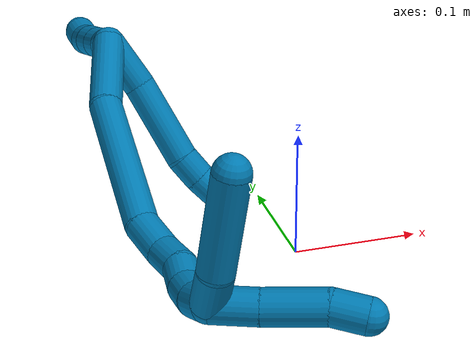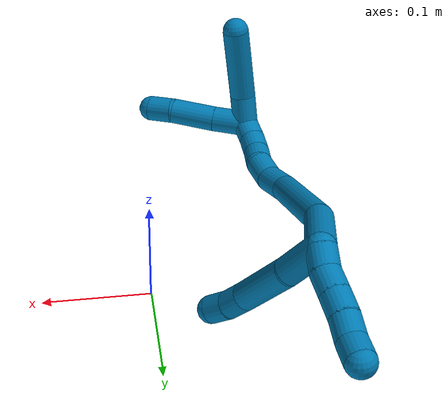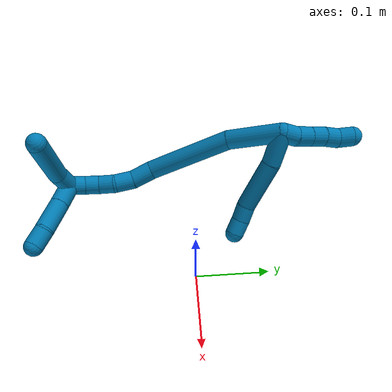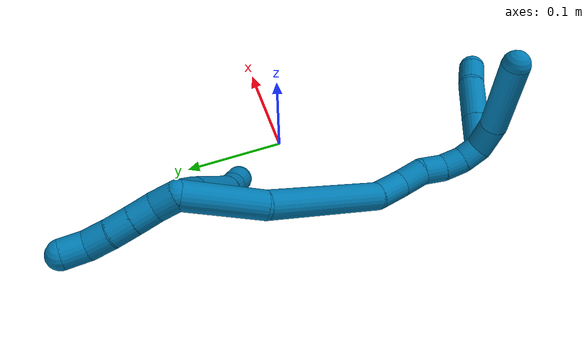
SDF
<sdf version="1.7">
 <world name="default">
  <model name="9">
   <static>0</static>
   <link name="9">
    <collision name="collision-cylinder-e_1_2_8">
     <pose>0.014747 0.001646 -0.014513 -3.02866 0.790207 -2.87214</pose>
     <geometry><cylinder><radius>0.0125</radius><length>0.041511</length></cylinder></geometry>
     <surface>
      <friction><ode><mu>1.16</mu><mu2>1.16</mu2><slip1>0</slip1><slip2>0</slip2></ode></friction>
      <contact><ode><kp>1e+06</kp><kd>1</kd><max_vel>0</max_vel><min_depth>0.001</min_depth></ode></contact>
     </surface>
    </collision>
    <visual name="visual-cylinder-e_1_2_8">
     <pose>0.014747 0.001646 -0.014513 -3.02866 0.790207 -2.87214</pose>
     <geometry><cylinder><radius>0.0125</radius><length>0.041511</length></cylinder></geometry>
     <material><ambient>0 0.490196 0.709804 1</ambient></material>
    </visual>
    <collision name="collision-cylinder-e_2_8_9">
     <pose>0.053669 -0.000379 -0.051631 2.98059 0.812438 2.7708</pose>
     <geometry><cylinder><radius>0.0125</radius><length>0.066602</length></cylinder></geometry>
     <surface>
      <friction><ode><mu>1.16</mu><mu2>1.16</mu2><slip1>0</slip1><slip2>0</slip2></ode></friction>
      <contact><ode><kp>1e+06</kp><kd>1</kd><max_vel>0</max_vel><min_depth>0.001</min_depth></ode></contact>
     </surface>
    </collision>
    <visual name="visual-cylinder-e_2_8_9">
     <pose>0.053669 -0.000379 -0.051631 2.98059 0.812438 2.7708</pose>
     <geometry><cylinder><radius>0.0125</radius><length>0.066602</length></cylinder></geometry>
     <material><ambient>0 0.490196 0.709804 1</ambient></material>
    </visual>
    <collision name="collision-cylinder-e_3_9_10">
     <pose>0.086241 -0.003094 -0.080845 -2.99787 0.899023 -2.84536</pose>
     <geometry><cylinder><radius>0.0125</radius><length>0.021454</length></cylinder></geometry>
     <surface>
      <friction><ode><mu>1.16</mu><mu2>1.16</mu2><slip1>0</slip1><slip2>0</slip2></ode></friction>
      <contact><ode><kp>1e+06</kp><kd>1</kd><max_vel>0</max_vel><min_depth>0.001</min_depth></ode></contact>
     </surface>
    </collision>
    <visual name="visual-cylinder-e_3_9_10">
     <pose>0.086241 -0.003094 -0.080845 -2.99787 0.899023 -2.84536</pose>
     <geometry><cylinder><radius>0.0125</radius><length>0.021454</length></cylinder></geometry>
     <material><ambient>0 0.490196 0.709804 1</ambient></material>
    </visual>
    <collision name="collision-cylinder-e_4_10_6">
     <pose>0.103572 -0.001413 -0.092353 -2.99469 1.06453 -2.893</pose>
     <geometry><cylinder><radius>0.0125</radius><length>0.020433</length></cylinder></geometry>
     <surface>
      <friction><ode><mu>1.16</mu><mu2>1.16</mu2><slip1>0</slip1><slip2>0</slip2></ode></friction>
      <contact><ode><kp>1e+06</kp><kd>1</kd><max_vel>0</max_vel><min_depth>0.001</min_depth></ode></contact>
     </surface>
    </collision>
    <visual name="visual-cylinder-e_4_10_6">
     <pose>0.103572 -0.001413 -0.092353 -2.99469 1.06453 -2.893</pose>
     <geometry><cylinder><radius>0.0125</radius><length>0.020433</length></cylinder></geometry>
     <material><ambient>0 0.490196 0.709804 1</ambient></material>
    </visual>
    <collision name="collision-cylinder-e_1_2_11">
     <pose>-0.005003 0.007056 -0.005018 -2.18902 -0.523954 0.958644</pose>
     <geometry><cylinder><radius>0.0125</radius><length>0.02</length></cylinder></geometry>
     <surface>
      <friction><ode><mu>1.16</mu><mu2>1.16</mu2><slip1>0</slip1><slip2>0</slip2></ode></friction>
      <contact><ode><kp>1e+06</kp><kd>1</kd><max_vel>0</max_vel><min_depth>0.001</min_depth></ode></contact>
     </surface>
    </collision>
    <visual name="visual-cylinder-e_1_2_11">
     <pose>-0.005003 0.007056 -0.005018 -2.18902 -0.523954 0.958644</pose>
     <geometry><cylinder><radius>0.0125</radius><length>0.02</length></cylinder></geometry>
     <material><ambient>0 0.490196 0.709804 1</ambient></material>
    </visual>
    <collision name="collision-cylinder-e_2_11_12">
     <pose>-0.016879 0.020237 -0.013942 -2.13835 -0.757706 1.25578</pose>
     <geometry><cylinder><radius>0.0125</radius><length>0.02</length></cylinder></geometry>
     <surface>
      <friction><ode><mu>1.16</mu><mu2>1.16</mu2><slip1>0</slip1><slip2>0</slip2></ode></friction>
      <contact><ode><kp>1e+06</kp><kd>1</kd><max_vel>0</max_vel><min_depth>0.001</min_depth></ode></contact>
     </surface>
    </collision>
    <visual name="visual-cylinder-e_2_11_12">
     <pose>-0.016879 0.020237 -0.013942 -2.13835 -0.757706 1.25578</pose>
     <geometry><cylinder><radius>0.0125</radius><length>0.02</length></cylinder></geometry>
     <material><ambient>0 0.490196 0.709804 1</ambient></material>
    </visual>
    <collision name="collision-cylinder-e_3_12_13">
     <pose>-0.030541 0.032642 -0.02165 -2.11536 -0.746358 1.21454</pose>
     <geometry><cylinder><radius>0.0125</radius><length>0.02</length></cylinder></geometry>
     <surface>
      <friction><ode><mu>1.16</mu><mu2>1.16</mu2><slip1>0</slip1><slip2>0</slip2></ode></friction>
      <contact><ode><kp>1e+06</kp><kd>1</kd><max_vel>0</max_vel><min_depth>0.001</min_depth></ode></contact>
     </surface>
    </collision>
    <visual name="visual-cylinder-e_3_12_13">
     <pose>-0.030541 0.032642 -0.02165 -2.11536 -0.746358 1.21454</pose>
     <geometry><cylinder><radius>0.0125</radius><length>0.02</length></cylinder></geometry>
     <material><ambient>0 0.490196 0.709804 1</ambient></material>
    </visual>
    <collision name="collision-cylinder-e_4_13_14">
     <pose>-0.043323 0.045787 -0.02957 -2.11097 -0.642597 1.06262</pose>
     <geometry><cylinder><radius>0.0125</radius><length>0.02</length></cylinder></geometry>
     <surface>
      <friction><ode><mu>1.16</mu><mu2>1.16</mu2><slip1>0</slip1><slip2>0</slip2></ode></friction>
      <contact><ode><kp>1e+06</kp><kd>1</kd><max_vel>0</max_vel><min_depth>0.001</min_depth></ode></contact>
     </surface>
    </collision>
    <visual name="visual-cylinder-e_4_13_14">
     <pose>-0.043323 0.045787 -0.02957 -2.11097 -0.642597 1.06262</pose>
     <geometry><cylinder><radius>0.0125</radius><length>0.02</length></cylinder></geometry>
     <material><ambient>0 0.490196 0.709804 1</ambient></material>
    </visual>
    <collision name="collision-cylinder-e_5_14_5">
     <pose>-0.056178 0.059813 -0.034969 -1.74794 -0.756271 0.886384</pose>
     <geometry><cylinder><radius>0.0125</radius><length>0.02</length></cylinder></geometry>
     <surface>
      <friction><ode><mu>1.16</mu><mu2>1.16</mu2><slip1>0</slip1><slip2>0</slip2></ode></friction>
      <contact><ode><kp>1e+06</kp><kd>1</kd><max_vel>0</max_vel><min_depth>0.001</min_depth></ode></contact>
     </surface>
    </collision>
    <visual name="visual-cylinder-e_5_14_5">
     <pose>-0.056178 0.059813 -0.034969 -1.74794 -0.756271 0.886384</pose>
     <geometry><cylinder><radius>0.0125</radius><length>0.02</length></cylinder></geometry>
     <material><ambient>0 0.490196 0.709804 1</ambient></material>
    </visual>
    <collision name="collision-cylinder-e_1_2_15">
     <pose>0.016968 -0.029759 -0.009369 1.8758 0.498138 0.667521</pose>
     <geometry><cylinder><radius>0.0125</radius><length>0.071029</length></cylinder></geometry>
     <surface>
      <friction><ode><mu>1.16</mu><mu2>1.16</mu2><slip1>0</slip1><slip2>0</slip2></ode></friction>
      <contact><ode><kp>1e+06</kp><kd>1</kd><max_vel>0</max_vel><min_depth>0.001</min_depth></ode></contact>
     </surface>
    </collision>
    <visual name="visual-cylinder-e_1_2_15">
     <pose>0.016968 -0.029759 -0.009369 1.8758 0.498138 0.667521</pose>
     <geometry><cylinder><radius>0.0125</radius><length>0.071029</length></cylinder></geometry>
     <material><ambient>0 0.490196 0.709804 1</ambient></material>
    </visual>
    <collision name="collision-cylinder-e_2_15_16">
     <pose>0.072367 -0.097472 -0.035375 1.98393 0.74771 1.0813</pose>
     <geometry><cylinder><radius>0.0125</radius><length>0.113035</length></cylinder></geometry>
     <surface>
      <friction><ode><mu>1.16</mu><mu2>1.16</mu2><slip1>0</slip1><slip2>0</slip2></ode></friction>
      <contact><ode><kp>1e+06</kp><kd>1</kd><max_vel>0</max_vel><min_depth>0.001</min_depth></ode></contact>
     </surface>
    </collision>
    <visual name="visual-cylinder-e_2_15_16">
     <pose>0.072367 -0.097472 -0.035375 1.98393 0.74771 1.0813</pose>
     <geometry><cylinder><radius>0.0125</radius><length>0.113035</length></cylinder></geometry>
     <material><ambient>0 0.490196 0.709804 1</ambient></material>
    </visual>
    <collision name="collision-cylinder-e_3_16_17">
     <pose>0.123495 -0.142806 -0.053534 1.77409 1.0353 1.21985</pose>
     <geometry><cylinder><radius>0.0125</radius><length>0.029531</length></cylinder></geometry>
     <surface>
      <friction><ode><mu>1.16</mu><mu2>1.16</mu2><slip1>0</slip1><slip2>0</slip2></ode></friction>
      <contact><ode><kp>1e+06</kp><kd>1</kd><max_vel>0</max_vel><min_depth>0.001</min_depth></ode></contact>
     </surface>
    </collision>
    <visual name="visual-cylinder-e_3_16_17">
     <pose>0.123495 -0.142806 -0.053534 1.77409 1.0353 1.21985</pose>
     <geometry><cylinder><radius>0.0125</radius><length>0.029531</length></cylinder></geometry>
     <material><ambient>0 0.490196 0.709804 1</ambient></material>
    </visual>
    <collision name="collision-cylinder-e_4_17_18">
     <pose>0.146096 -0.157578 -0.05269 1.26118 0.906005 0.68286</pose>
     <geometry><cylinder><radius>0.0125</radius><length>0.025165</length></cylinder></geometry>
     <surface>
      <friction><ode><mu>1.16</mu><mu2>1.16</mu2><slip1>0</slip1><slip2>0</slip2></ode></friction>
      <contact><ode><kp>1e+06</kp><kd>1</kd><max_vel>0</max_vel><min_depth>0.001</min_depth></ode></contact>
     </surface>
    </collision>
    <visual name="visual-cylinder-e_4_17_18">
     <pose>0.146096 -0.157578 -0.05269 1.26118 0.906005 0.68286</pose>
     <geometry><cylinder><radius>0.0125</radius><length>0.025165</length></cylinder></geometry>
     <material><ambient>0 0.490196 0.709804 1</ambient></material>
    </visual>
    <collision name="collision-cylinder-e_5_18_19">
     <pose>0.162381 -0.173425 -0.050198 1.55576 0.646546 0.637544</pose>
     <geometry><cylinder><radius>0.0125</radius><length>0.021187</length></cylinder></geometry>
     <surface>
      <friction><ode><mu>1.16</mu><mu2>1.16</mu2><slip1>0</slip1><slip2>0</slip2></ode></friction>
      <contact><ode><kp>1e+06</kp><kd>1</kd><max_vel>0</max_vel><min_depth>0.001</min_depth></ode></contact>
     </surface>
    </collision>
    <visual name="visual-cylinder-e_5_18_19">
     <pose>0.162381 -0.173425 -0.050198 1.55576 0.646546 0.637544</pose>
     <geometry><cylinder><radius>0.0125</radius><length>0.021187</length></cylinder></geometry>
     <material><ambient>0 0.490196 0.709804 1</ambient></material>
    </visual>
    <collision name="collision-cylinder-e_6_19_20">
     <pose>0.175309 -0.189014 -0.047518 1.22714 0.712488 0.512602</pose>
     <geometry><cylinder><radius>0.0125</radius><length>0.020026</length></cylinder></geometry>
     <surface>
      <friction><ode><mu>1.16</mu><mu2>1.16</mu2><slip1>0</slip1><slip2>0</slip2></ode></friction>
      <contact><ode><kp>1e+06</kp><kd>1</kd><max_vel>0</max_vel><min_depth>0.001</min_depth></ode></contact>
     </surface>
    </collision>
    <visual name="visual-cylinder-e_6_19_20">
     <pose>0.175309 -0.189014 -0.047518 1.22714 0.712488 0.512602</pose>
     <geometry><cylinder><radius>0.0125</radius><length>0.020026</length></cylinder></geometry>
     <material><ambient>0 0.490196 0.709804 1</ambient></material>
    </visual>
    <collision name="collision-cylinder-e_7_20_1">
     <pose>0.188703 -0.20178 -0.040312 0.880268 0.7531 0.368222</pose>
     <geometry><cylinder><radius>0.0125</radius><length>0.020027</length></cylinder></geometry>
     <surface>
      <friction><ode><mu>1.16</mu><mu2>1.16</mu2><slip1>0</slip1><slip2>0</slip2></ode></friction>
      <contact><ode><kp>1e+06</kp><kd>1</kd><max_vel>0</max_vel><min_depth>0.001</min_depth></ode></contact>
     </surface>
    </collision>
    <visual name="visual-cylinder-e_7_20_1">
     <pose>0.188703 -0.20178 -0.040312 0.880268 0.7531 0.368222</pose>
     <geometry><cylinder><radius>0.0125</radius><length>0.020027</length></cylinder></geometry>
     <material><ambient>0 0.490196 0.709804 1</ambient></material>
    </visual>
    <collision name="collision-cylinder-e_1_1_21">
     <pose>0.196937 -0.209943 -0.021016 0.171134 0.092978 0.007981</pose>
     <geometry><cylinder><radius>0.0125</radius><length>0.029849</length></cylinder></geometry>
     <surface>
      <friction><ode><mu>1.16</mu><mu2>1.16</mu2><slip1>0</slip1><slip2>0</slip2></ode></friction>
      <contact><ode><kp>1e+06</kp><kd>1</kd><max_vel>0</max_vel><min_depth>0.001</min_depth></ode></contact>
     </surface>
    </collision>
    <visual name="visual-cylinder-e_1_1_21">
     <pose>0.196937 -0.209943 -0.021016 0.171134 0.092978 0.007981</pose>
     <geometry><cylinder><radius>0.0125</radius><length>0.029849</length></cylinder></geometry>
     <material><ambient>0 0.490196 0.709804 1</ambient></material>
    </visual>
    <collision name="collision-cylinder-e_2_21_4">
     <pose>0.19768 -0.211608 0.028686 -0.024698 -0.018324 0.000226</pose>
     <geometry><cylinder><radius>0.0125</radius><length>0.070151</length></cylinder></geometry>
     <surface>
      <friction><ode><mu>1.16</mu><mu2>1.16</mu2><slip1>0</slip1><slip2>0</slip2></ode></friction>
      <contact><ode><kp>1e+06</kp><kd>1</kd><max_vel>0</max_vel><min_depth>0.001</min_depth></ode></contact>
     </surface>
    </collision>
    <visual name="visual-cylinder-e_2_21_4">
     <pose>0.19768 -0.211608 0.028686 -0.024698 -0.018324 0.000226</pose>
     <geometry><cylinder><radius>0.0125</radius><length>0.070151</length></cylinder></geometry>
     <material><ambient>0 0.490196 0.709804 1</ambient></material>
    </visual>
    <collision name="collision-cylinder-e_1_1_22">
     <pose>0.210573 -0.20212 -0.033066 -1.11539 1.19692 -0.804275</pose>
     <geometry><cylinder><radius>0.0125</radius><length>0.032272</length></cylinder></geometry>
     <surface>
      <friction><ode><mu>1.16</mu><mu2>1.16</mu2><slip1>0</slip1><slip2>0</slip2></ode></friction>
      <contact><ode><kp>1e+06</kp><kd>1</kd><max_vel>0</max_vel><min_depth>0.001</min_depth></ode></contact>
     </surface>
    </collision>
    <visual name="visual-cylinder-e_1_1_22">
     <pose>0.210573 -0.20212 -0.033066 -1.11539 1.19692 -0.804275</pose>
     <geometry><cylinder><radius>0.0125</radius><length>0.032272</length></cylinder></geometry>
     <material><ambient>0 0.490196 0.709804 1</ambient></material>
    </visual>
    <collision name="collision-cylinder-e_2_22_23">
     <pose>0.245472 -0.189665 -0.025754 -0.987997 1.16342 -0.680732</pose>
     <geometry><cylinder><radius>0.0125</radius><length>0.043299</length></cylinder></geometry>
     <surface>
      <friction><ode><mu>1.16</mu><mu2>1.16</mu2><slip1>0</slip1><slip2>0</slip2></ode></friction>
      <contact><ode><kp>1e+06</kp><kd>1</kd><max_vel>0</max_vel><min_depth>0.001</min_depth></ode></contact>
     </surface>
    </collision>
    <visual name="visual-cylinder-e_2_22_23">
     <pose>0.245472 -0.189665 -0.025754 -0.987997 1.16342 -0.680732</pose>
     <geometry><cylinder><radius>0.0125</radius><length>0.043299</length></cylinder></geometry>
     <material><ambient>0 0.490196 0.709804 1</ambient></material>
    </visual>
    <collision name="collision-cylinder-e_3_23_3">
     <pose>0.277342 -0.18024 -0.020534 -1.35379 1.37989 -1.17108</pose>
     <geometry><cylinder><radius>0.0125</radius><length>0.024429</length></cylinder></geometry>
     <surface>
      <friction><ode><mu>1.16</mu><mu2>1.16</mu2><slip1>0</slip1><slip2>0</slip2></ode></friction>
      <contact><ode><kp>1e+06</kp><kd>1</kd><max_vel>0</max_vel><min_depth>0.001</min_depth></ode></contact>
     </surface>
    </collision>
    <visual name="visual-cylinder-e_3_23_3">
     <pose>0.277342 -0.18024 -0.020534 -1.35379 1.37989 -1.17108</pose>
     <geometry><cylinder><radius>0.0125</radius><length>0.024429</length></cylinder></geometry>
     <material><ambient>0 0.490196 0.709804 1</ambient></material>
    </visual>
    <collision name="collision-sphere-3">
     <pose>0.289335 -0.177977 -0.020035 0 -0 0</pose>
     <geometry><sphere><radius>0.0125</radius></sphere></geometry>
     <surface>
      <friction><ode><mu>1.16</mu><mu2>1.16</mu2><slip1>0</slip1><slip2>0</slip2></ode></friction>
      <contact><ode><kp>1e+06</kp><kd>1</kd><max_vel>0</max_vel><min_depth>0.001</min_depth></ode></contact>
     </surface>
    </collision>
    <visual name="visual-sphere-3">
     <pose>0.289335 -0.177977 -0.020035 0 -0 0</pose>
     <geometry><sphere><radius>0.0125</radius></sphere></geometry>
     <material><ambient>0 0.490196 0.709804 1</ambient></material>
    </visual>
    <collision name="collision-sphere-23">
     <pose>0.26535 -0.182504 -0.021033 0 -0 0</pose>
     <geometry><sphere><radius>0.0125</radius></sphere></geometry>
     <surface>
      <friction><ode><mu>1.16</mu><mu2>1.16</mu2><slip1>0</slip1><slip2>0</slip2></ode></friction>
      <contact><ode><kp>1e+06</kp><kd>1</kd><max_vel>0</max_vel><min_depth>0.001</min_depth></ode></contact>
     </surface>
    </collision>
    <visual name="visual-sphere-23">
     <pose>0.26535 -0.182504 -0.021033 0 -0 0</pose>
     <geometry><sphere><radius>0.0125</radius></sphere></geometry>
     <material><ambient>0 0.490196 0.709804 1</ambient></material>
    </visual>
    <collision name="collision-sphere-22">
     <pose>0.225594 -0.196827 -0.030474 0 -0 0</pose>
     <geometry><sphere><radius>0.0125</radius></sphere></geometry>
     <surface>
      <friction><ode><mu>1.16</mu><mu2>1.16</mu2><slip1>0</slip1><slip2>0</slip2></ode></friction>
      <contact><ode><kp>1e+06</kp><kd>1</kd><max_vel>0</max_vel><min_depth>0.001</min_depth></ode></contact>
     </surface>
    </collision>
    <visual name="visual-sphere-22">
     <pose>0.225594 -0.196827 -0.030474 0 -0 0</pose>
     <geometry><sphere><radius>0.0125</radius></sphere></geometry>
     <material><ambient>0 0.490196 0.709804 1</ambient></material>
    </visual>
    <collision name="collision-sphere-4">
     <pose>0.197037 -0.210741 0.063745 0 -0 0</pose>
     <geometry><sphere><radius>0.0125</radius></sphere></geometry>
     <surface>
      <friction><ode><mu>1.16</mu><mu2>1.16</mu2><slip1>0</slip1><slip2>0</slip2></ode></friction>
      <contact><ode><kp>1e+06</kp><kd>1</kd><max_vel>0</max_vel><min_depth>0.001</min_depth></ode></contact>
     </surface>
    </collision>
    <visual name="visual-sphere-4">
     <pose>0.197037 -0.210741 0.063745 0 -0 0</pose>
     <geometry><sphere><radius>0.0125</radius></sphere></geometry>
     <material><ambient>0 0.490196 0.709804 1</ambient></material>
    </visual>
    <collision name="collision-sphere-21">
     <pose>0.198323 -0.212474 -0.006373 0 -0 0</pose>
     <geometry><sphere><radius>0.0125</radius></sphere></geometry>
     <surface>
      <friction><ode><mu>1.16</mu><mu2>1.16</mu2><slip1>0</slip1><slip2>0</slip2></ode></friction>
      <contact><ode><kp>1e+06</kp><kd>1</kd><max_vel>0</max_vel><min_depth>0.001</min_depth></ode></contact>
     </surface>
    </collision>
    <visual name="visual-sphere-21">
     <pose>0.198323 -0.212474 -0.006373 0 -0 0</pose>
     <geometry><sphere><radius>0.0125</radius></sphere></geometry>
     <material><ambient>0 0.490196 0.709804 1</ambient></material>
    </visual>
    <collision name="collision-sphere-1">
     <pose>0.195551 -0.207412 -0.035659 0 -0 0</pose>
     <geometry><sphere><radius>0.0125</radius></sphere></geometry>
     <surface>
      <friction><ode><mu>1.16</mu><mu2>1.16</mu2><slip1>0</slip1><slip2>0</slip2></ode></friction>
      <contact><ode><kp>1e+06</kp><kd>1</kd><max_vel>0</max_vel><min_depth>0.001</min_depth></ode></contact>
     </surface>
    </collision>
    <visual name="visual-sphere-1">
     <pose>0.195551 -0.207412 -0.035659 0 -0 0</pose>
     <geometry><sphere><radius>0.0125</radius></sphere></geometry>
     <material><ambient>0 0.490196 0.709804 1</ambient></material>
    </visual>
    <collision name="collision-sphere-11">
     <pose>-0.010006 0.014112 -0.010037 0 -0 0</pose>
     <geometry><sphere><radius>0.0125</radius></sphere></geometry>
     <surface>
      <friction><ode><mu>1.16</mu><mu2>1.16</mu2><slip1>0</slip1><slip2>0</slip2></ode></friction>
      <contact><ode><kp>1e+06</kp><kd>1</kd><max_vel>0</max_vel><min_depth>0.001</min_depth></ode></contact>
     </surface>
    </collision>
    <visual name="visual-sphere-11">
     <pose>-0.010006 0.014112 -0.010037 0 -0 0</pose>
     <geometry><sphere><radius>0.0125</radius></sphere></geometry>
     <material><ambient>0 0.490196 0.709804 1</ambient></material>
    </visual>
    <collision name="collision-sphere-6">
     <pose>0.112507 -0.000688 -0.097253 0 -0 0</pose>
     <geometry><sphere><radius>0.0125</radius></sphere></geometry>
     <surface>
      <friction><ode><mu>1.16</mu><mu2>1.16</mu2><slip1>0</slip1><slip2>0</slip2></ode></friction>
      <contact><ode><kp>1e+06</kp><kd>1</kd><max_vel>0</max_vel><min_depth>0.001</min_depth></ode></contact>
     </surface>
    </collision>
    <visual name="visual-sphere-6">
     <pose>0.112507 -0.000688 -0.097253 0 -0 0</pose>
     <geometry><sphere><radius>0.0125</radius></sphere></geometry>
     <material><ambient>0 0.490196 0.709804 1</ambient></material>
    </visual>
    <collision name="collision-sphere-10">
     <pose>0.094637 -0.002138 -0.087452 0 -0 0</pose>
     <geometry><sphere><radius>0.0125</radius></sphere></geometry>
     <surface>
      <friction><ode><mu>1.16</mu><mu2>1.16</mu2><slip1>0</slip1><slip2>0</slip2></ode></friction>
      <contact><ode><kp>1e+06</kp><kd>1</kd><max_vel>0</max_vel><min_depth>0.001</min_depth></ode></contact>
     </surface>
    </collision>
    <visual name="visual-sphere-10">
     <pose>0.094637 -0.002138 -0.087452 0 -0 0</pose>
     <geometry><sphere><radius>0.0125</radius></sphere></geometry>
     <material><ambient>0 0.490196 0.709804 1</ambient></material>
    </visual>
    <collision name="collision-sphere-9">
     <pose>0.077845 -0.004051 -0.074237 0 -0 0</pose>
     <geometry><sphere><radius>0.0125</radius></sphere></geometry>
     <surface>
      <friction><ode><mu>1.16</mu><mu2>1.16</mu2><slip1>0</slip1><slip2>0</slip2></ode></friction>
      <contact><ode><kp>1e+06</kp><kd>1</kd><max_vel>0</max_vel><min_depth>0.001</min_depth></ode></contact>
     </surface>
    </collision>
    <visual name="visual-sphere-9">
     <pose>0.077845 -0.004051 -0.074237 0 -0 0</pose>
     <geometry><sphere><radius>0.0125</radius></sphere></geometry>
     <material><ambient>0 0.490196 0.709804 1</ambient></material>
    </visual>
    <collision name="collision-sphere-2">
     <geometry><sphere><radius>0.0125</radius></sphere></geometry>
     <surface>
      <friction><ode><mu>1.16</mu><mu2>1.16</mu2><slip1>0</slip1><slip2>0</slip2></ode></friction>
      <contact><ode><kp>1e+06</kp><kd>1</kd><max_vel>0</max_vel><min_depth>0.001</min_depth></ode></contact>
     </surface>
    </collision>
    <visual name="visual-sphere-2">
     <geometry><sphere><radius>0.0125</radius></sphere></geometry>
     <material><ambient>0 0.490196 0.709804 1</ambient></material>
    </visual>
    <collision name="collision-sphere-19">
     <pose>0.168763 -0.18188 -0.050071 0 -0 0</pose>
     <geometry><sphere><radius>0.0125</radius></sphere></geometry>
     <surface>
      <friction><ode><mu>1.16</mu><mu2>1.16</mu2><slip1>0</slip1><slip2>0</slip2></ode></friction>
      <contact><ode><kp>1e+06</kp><kd>1</kd><max_vel>0</max_vel><min_depth>0.001</min_depth></ode></contact>
     </surface>
    </collision>
    <visual name="visual-sphere-19">
     <pose>0.168763 -0.18188 -0.050071 0 -0 0</pose>
     <geometry><sphere><radius>0.0125</radius></sphere></geometry>
     <material><ambient>0 0.490196 0.709804 1</ambient></material>
    </visual>
    <collision name="collision-sphere-8">
     <pose>0.029494 0.003292 -0.029025 0 -0 0</pose>
     <geometry><sphere><radius>0.0125</radius></sphere></geometry>
     <surface>
      <friction><ode><mu>1.16</mu><mu2>1.16</mu2><slip1>0</slip1><slip2>0</slip2></ode></friction>
      <contact><ode><kp>1e+06</kp><kd>1</kd><max_vel>0</max_vel><min_depth>0.001</min_depth></ode></contact>
     </surface>
    </collision>
    <visual name="visual-sphere-8">
     <pose>0.029494 0.003292 -0.029025 0 -0 0</pose>
     <geometry><sphere><radius>0.0125</radius></sphere></geometry>
     <material><ambient>0 0.490196 0.709804 1</ambient></material>
    </visual>
    <collision name="collision-sphere-12">
     <pose>-0.023751 0.026362 -0.017847 0 -0 0</pose>
     <geometry><sphere><radius>0.0125</radius></sphere></geometry>
     <surface>
      <friction><ode><mu>1.16</mu><mu2>1.16</mu2><slip1>0</slip1><slip2>0</slip2></ode></friction>
      <contact><ode><kp>1e+06</kp><kd>1</kd><max_vel>0</max_vel><min_depth>0.001</min_depth></ode></contact>
     </surface>
    </collision>
    <visual name="visual-sphere-12">
     <pose>-0.023751 0.026362 -0.017847 0 -0 0</pose>
     <geometry><sphere><radius>0.0125</radius></sphere></geometry>
     <material><ambient>0 0.490196 0.709804 1</ambient></material>
    </visual>
    <collision name="collision-sphere-13">
     <pose>-0.037331 0.038922 -0.025453 0 -0 0</pose>
     <geometry><sphere><radius>0.0125</radius></sphere></geometry>
     <surface>
      <friction><ode><mu>1.16</mu><mu2>1.16</mu2><slip1>0</slip1><slip2>0</slip2></ode></friction>
      <contact><ode><kp>1e+06</kp><kd>1</kd><max_vel>0</max_vel><min_depth>0.001</min_depth></ode></contact>
     </surface>
    </collision>
    <visual name="visual-sphere-13">
     <pose>-0.037331 0.038922 -0.025453 0 -0 0</pose>
     <geometry><sphere><radius>0.0125</radius></sphere></geometry>
     <material><ambient>0 0.490196 0.709804 1</ambient></material>
    </visual>
    <collision name="collision-sphere-14">
     <pose>-0.049316 0.052653 -0.033687 0 -0 0</pose>
     <geometry><sphere><radius>0.0125</radius></sphere></geometry>
     <surface>
      <friction><ode><mu>1.16</mu><mu2>1.16</mu2><slip1>0</slip1><slip2>0</slip2></ode></friction>
      <contact><ode><kp>1e+06</kp><kd>1</kd><max_vel>0</max_vel><min_depth>0.001</min_depth></ode></contact>
     </surface>
    </collision>
    <visual name="visual-sphere-14">
     <pose>-0.049316 0.052653 -0.033687 0 -0 0</pose>
     <geometry><sphere><radius>0.0125</radius></sphere></geometry>
     <material><ambient>0 0.490196 0.709804 1</ambient></material>
    </visual>
    <collision name="collision-sphere-5">
     <pose>-0.06304 0.066973 -0.036251 0 -0 0</pose>
     <geometry><sphere><radius>0.0125</radius></sphere></geometry>
     <surface>
      <friction><ode><mu>1.16</mu><mu2>1.16</mu2><slip1>0</slip1><slip2>0</slip2></ode></friction>
      <contact><ode><kp>1e+06</kp><kd>1</kd><max_vel>0</max_vel><min_depth>0.001</min_depth></ode></contact>
     </surface>
    </collision>
    <visual name="visual-sphere-5">
     <pose>-0.06304 0.066973 -0.036251 0 -0 0</pose>
     <geometry><sphere><radius>0.0125</radius></sphere></geometry>
     <material><ambient>0 0.490196 0.709804 1</ambient></material>
    </visual>
    <collision name="collision-sphere-15">
     <pose>0.033937 -0.059517 -0.018737 0 -0 0</pose>
     <geometry><sphere><radius>0.0125</radius></sphere></geometry>
     <surface>
      <friction><ode><mu>1.16</mu><mu2>1.16</mu2><slip1>0</slip1><slip2>0</slip2></ode></friction>
      <contact><ode><kp>1e+06</kp><kd>1</kd><max_vel>0</max_vel><min_depth>0.001</min_depth></ode></contact>
     </surface>
    </collision>
    <visual name="visual-sphere-15">
     <pose>0.033937 -0.059517 -0.018737 0 -0 0</pose>
     <geometry><sphere><radius>0.0125</radius></sphere></geometry>
     <material><ambient>0 0.490196 0.709804 1</ambient></material>
    </visual>
    <collision name="collision-sphere-16">
     <pose>0.110796 -0.135427 -0.052013 0 -0 0</pose>
     <geometry><sphere><radius>0.0125</radius></sphere></geometry>
     <surface>
      <friction><ode><mu>1.16</mu><mu2>1.16</mu2><slip1>0</slip1><slip2>0</slip2></ode></friction>
      <contact><ode><kp>1e+06</kp><kd>1</kd><max_vel>0</max_vel><min_depth>0.001</min_depth></ode></contact>
     </surface>
    </collision>
    <visual name="visual-sphere-16">
     <pose>0.110796 -0.135427 -0.052013 0 -0 0</pose>
     <geometry><sphere><radius>0.0125</radius></sphere></geometry>
     <material><ambient>0 0.490196 0.709804 1</ambient></material>
    </visual>
    <collision name="collision-sphere-17">
     <pose>0.136193 -0.150185 -0.055055 0 -0 0</pose>
     <geometry><sphere><radius>0.0125</radius></sphere></geometry>
     <surface>
      <friction><ode><mu>1.16</mu><mu2>1.16</mu2><slip1>0</slip1><slip2>0</slip2></ode></friction>
      <contact><ode><kp>1e+06</kp><kd>1</kd><max_vel>0</max_vel><min_depth>0.001</min_depth></ode></contact>
     </surface>
    </collision>
    <visual name="visual-sphere-17">
     <pose>0.136193 -0.150185 -0.055055 0 -0 0</pose>
     <geometry><sphere><radius>0.0125</radius></sphere></geometry>
     <material><ambient>0 0.490196 0.709804 1</ambient></material>
    </visual>
    <collision name="collision-sphere-18">
     <pose>0.155999 -0.164971 -0.050325 0 -0 0</pose>
     <geometry><sphere><radius>0.0125</radius></sphere></geometry>
     <surface>
      <friction><ode><mu>1.16</mu><mu2>1.16</mu2><slip1>0</slip1><slip2>0</slip2></ode></friction>
      <contact><ode><kp>1e+06</kp><kd>1</kd><max_vel>0</max_vel><min_depth>0.001</min_depth></ode></contact>
     </surface>
    </collision>
    <visual name="visual-sphere-18">
     <pose>0.155999 -0.164971 -0.050325 0 -0 0</pose>
     <geometry><sphere><radius>0.0125</radius></sphere></geometry>
     <material><ambient>0 0.490196 0.709804 1</ambient></material>
    </visual>
    <collision name="collision-sphere-20">
     <pose>0.181855 -0.196148 -0.044965 0 -0 0</pose>
     <geometry><sphere><radius>0.0125</radius></sphere></geometry>
     <surface>
      <friction><ode><mu>1.16</mu><mu2>1.16</mu2><slip1>0</slip1><slip2>0</slip2></ode></friction>
      <contact><ode><kp>1e+06</kp><kd>1</kd><max_vel>0</max_vel><min_depth>0.001</min_depth></ode></contact>
     </surface>
    </collision>
    <visual name="visual-sphere-20">
     <pose>0.181855 -0.196148 -0.044965 0 -0 0</pose>
     <geometry><sphere><radius>0.0125</radius></sphere></geometry>
     <material><ambient>0 0.490196 0.709804 1</ambient></material>
    </visual>
    <inertial>
     <pose>0.101998 -0.093074 -0.02861 0 -0 0</pose>
     <mass>0.75</mass>
     <inertia>
      <ixx>0.000223</ixx>
      <ixy>0</ixy>
      <ixz>0</ixz>
      <iyy>0.00024</iyy>
      <iyz>0</iyz>
      <izz>-3.9e-05</izz>
     </inertia>
    </inertial>
   </link>
   <pose>-0.118786 0.116625 0.14516 0.02403 0.176592 -0.713864</pose>
  </model>
 </world>
</sdf>
